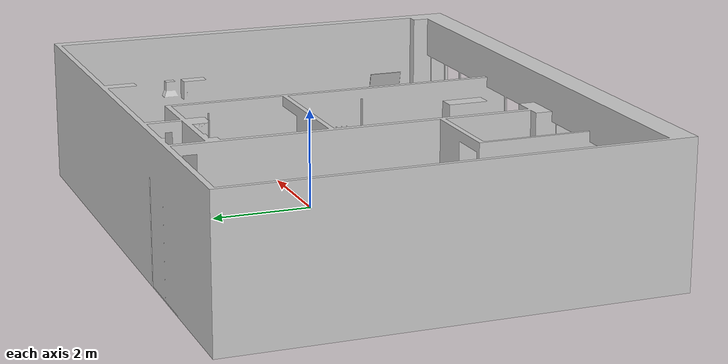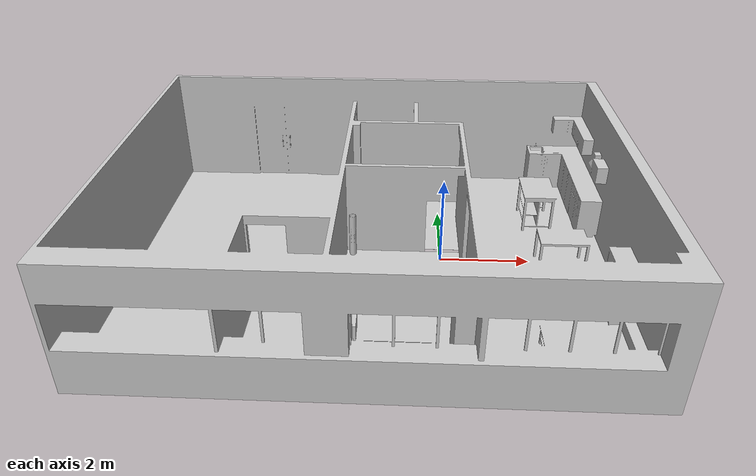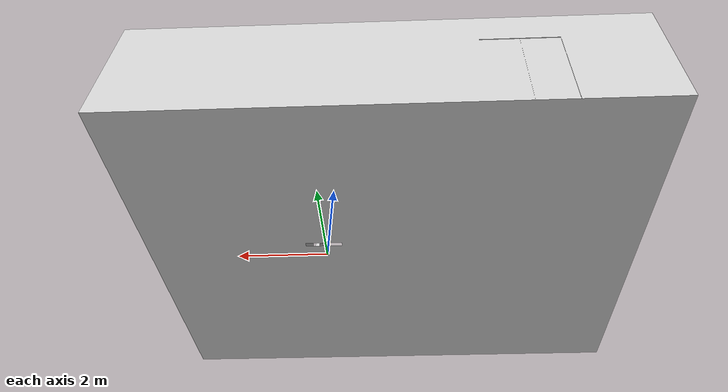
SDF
<?xml version="1.0" ?>
<sdf version="1.6">
  <model name="structure">
    <static>true</static>
    <link name="link">
      <collision name="collision">
        <geometry>
          <mesh>
            <uri>file://ralt/structure/meshes/fulllab.dae</uri>
          </mesh>
        </geometry>
      </collision>
      <visual name="visual">
        <geometry>
          <mesh>
            <uri>file://ralt/structure/meshes/fulllab.dae</uri>
          </mesh>
        </geometry>
      </visual>
    </link>
  </model>
</sdf>
